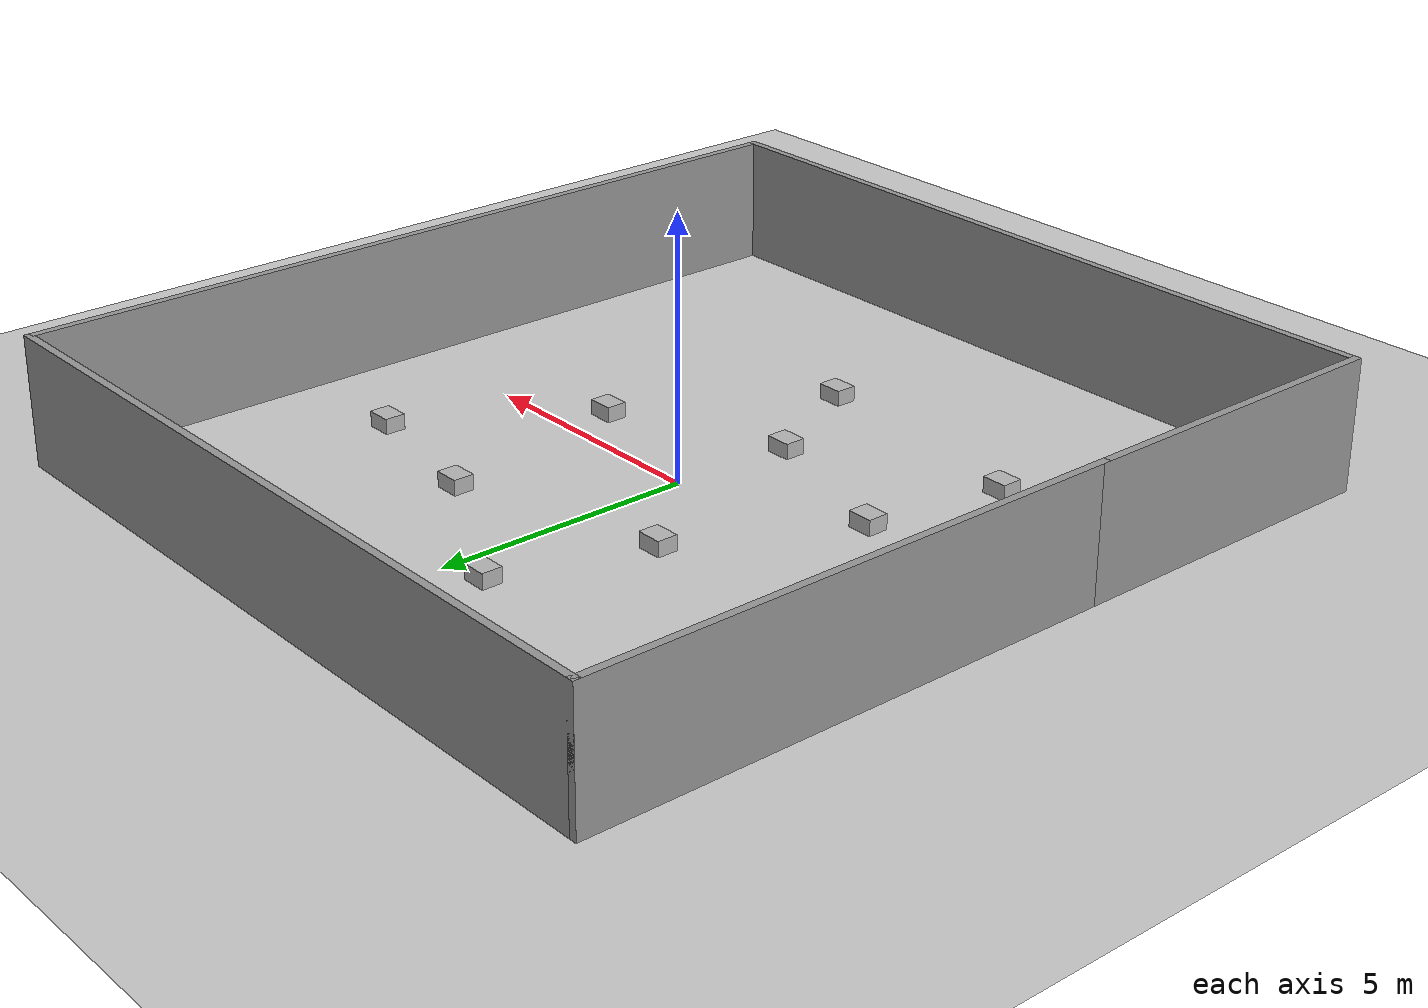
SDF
<sdf version="1.7">
 <world name="default">
  <light name="sun" type="directional">
   <pose>0 0 10 0 -0 0</pose>
   <diffuse>0.8 0.8 0.8 1</diffuse>
   <specular>0.2 0.2 0.2 1</specular>
   <attenuation>
    <range>1000</range>
    <constant>0.9</constant>
    <linear>0.01</linear>
    <quadratic>0.001</quadratic>
   </attenuation>
   <direction>-0.5 0.1 -0.9</direction>
   <spot><inner_angle>0</inner_angle><outer_angle>0</outer_angle><falloff>0</falloff></spot>
  </light>
  <model name="ground_plane">
   <static>1</static>
   <link name="link">
    <collision name="collision">
     <geometry><plane><normal>0 0 1</normal><size>100 100</size></plane></geometry>
     <surface><friction><ode><mu>100</mu><mu2>50</mu2></ode></friction></surface>
    </collision>
    <visual name="visual">
     <cast_shadows>0</cast_shadows>
     <geometry><plane><normal>0 0 1</normal><size>100 100</size></plane></geometry>
     <material>
      <script><uri>file://media/materials/scripts/gazebo.material</uri><name>Gazebo/Grey</name></script>
     </material>
    </visual>
   </link>
  </model>
  <gravity>0 0 -9.8</gravity>
  <magnetic_field>6e-06 2.3e-05 -4.2e-05</magnetic_field>
  <atmosphere type="adiabatic"/>
  <physics type="ode">
   <max_step_size>0.001</max_step_size>
   <real_time_factor>1</real_time_factor>
   <real_time_update_rate>1000</real_time_update_rate>
  </physics>
  <scene><ambient>0.4 0.4 0.4 1</ambient><background>0.7 0.7 0.7 1</background><shadows>1</shadows></scene>
  <spherical_coordinates>
   <surface_model>EARTH_WGS84</surface_model>
   <latitude_deg>0</latitude_deg>
   <longitude_deg>0</longitude_deg>
   <elevation>0</elevation>
   <heading_deg>0</heading_deg>
  </spherical_coordinates>
  <model name="cardboard_box">
   <pose>-1.70087 1.85406 0.149 0 -0 0</pose>
   <link name="link">
    <inertial>
     <mass>2</mass>
     <inertia>
      <ixx>0.0416667</ixx>
      <ixy>0</ixy>
      <ixz>0</ixz>
      <iyy>0.0566667</iyy>
      <iyz>0</iyz>
      <izz>0.0683333</izz>
     </inertia>
    </inertial>
    <collision name="collision">
     <geometry><box><size>0.5 0.4 0.3</size></box></geometry>
     <surface>
      <friction><ode><mu>1</mu><mu2>1</mu2></ode></friction>
      <contact><ode><kp>1e+07</kp><kd>1</kd><min_depth>0.001</min_depth><max_vel>0.1</max_vel></ode></contact>
     </surface>
    </collision>
    <visual name="visual">
     <pose>0 0 -0.15 0 -0 0</pose>
     <geometry>
      <mesh><uri>model://cardboard_box/meshes/cardboard_box.dae</uri><scale>1.25932 1.00745 0.755591</scale></mesh>
     </geometry>
    </visual>
   </link>
  </model>
  <model name="cardboard_box_0">
   <pose>-3.36851 -1.33775 0.149 0 -0 0</pose>
   <link name="link">
    <inertial>
     <mass>2</mass>
     <inertia>
      <ixx>0.0416667</ixx>
      <ixy>0</ixy>
      <ixz>0</ixz>
      <iyy>0.0566667</iyy>
      <iyz>0</iyz>
      <izz>0.0683333</izz>
     </inertia>
    </inertial>
    <collision name="collision">
     <geometry><box><size>0.5 0.4 0.3</size></box></geometry>
     <surface>
      <friction><ode><mu>1</mu><mu2>1</mu2></ode></friction>
      <contact><ode><kp>1e+07</kp><kd>1</kd><min_depth>0.001</min_depth><max_vel>0.1</max_vel></ode></contact>
     </surface>
    </collision>
    <visual name="visual">
     <pose>0 0 -0.15 0 -0 0</pose>
     <geometry>
      <mesh><uri>model://cardboard_box/meshes/cardboard_box.dae</uri><scale>1.25932 1.00745 0.755591</scale></mesh>
     </geometry>
    </visual>
   </link>
  </model>
  <model name="cardboard_box_1">
   <pose>-0.240151 -2.31317 0.149 0 -0 0</pose>
   <link name="link">
    <inertial>
     <mass>2</mass>
     <inertia>
      <ixx>0.0416667</ixx>
      <ixy>0</ixy>
      <ixz>0</ixz>
      <iyy>0.0566667</iyy>
      <iyz>0</iyz>
      <izz>0.0683333</izz>
     </inertia>
    </inertial>
    <collision name="collision">
     <geometry><box><size>0.5 0.4 0.3</size></box></geometry>
     <surface>
      <friction><ode><mu>1</mu><mu2>1</mu2></ode></friction>
      <contact><ode><kp>1e+07</kp><kd>1</kd><min_depth>0.001</min_depth><max_vel>0.1</max_vel></ode></contact>
     </surface>
    </collision>
    <visual name="visual">
     <pose>0 0 -0.15 0 -0 0</pose>
     <geometry>
      <mesh><uri>model://cardboard_box/meshes/cardboard_box.dae</uri><scale>1.25932 1.00745 0.755591</scale></mesh>
     </geometry>
    </visual>
   </link>
  </model>
  <model name="cardboard_box_2">
   <pose>2.344 3.06444 0.149 0 -0 0</pose>
   <link name="link">
    <inertial>
     <mass>2</mass>
     <inertia>
      <ixx>0.0416667</ixx>
      <ixy>0</ixy>
      <ixz>0</ixz>
      <iyy>0.0566667</iyy>
      <iyz>0</iyz>
      <izz>0.0683333</izz>
     </inertia>
    </inertial>
    <collision name="collision">
     <geometry><box><size>0.5 0.4 0.3</size></box></geometry>
     <surface>
      <friction><ode><mu>1</mu><mu2>1</mu2></ode></friction>
      <contact><ode><kp>1e+07</kp><kd>1</kd><min_depth>0.001</min_depth><max_vel>0.1</max_vel></ode></contact>
     </surface>
    </collision>
    <visual name="visual">
     <pose>0 0 -0.15 0 -0 0</pose>
     <geometry>
      <mesh><uri>model://cardboard_box/meshes/cardboard_box.dae</uri><scale>1.25932 1.00745 0.755591</scale></mesh>
     </geometry>
    </visual>
   </link>
  </model>
  <model name="cardboard_box_3">
   <pose>-5.43729 1.58346 0.149 0 -0 0</pose>
   <link name="link">
    <inertial>
     <mass>2</mass>
     <inertia>
      <ixx>0.0416667</ixx>
      <ixy>0</ixy>
      <ixz>0</ixz>
      <iyy>0.0566667</iyy>
      <iyz>0</iyz>
      <izz>0.0683333</izz>
     </inertia>
    </inertial>
    <collision name="collision">
     <geometry><box><size>0.5 0.4 0.3</size></box></geometry>
     <surface>
      <friction><ode><mu>1</mu><mu2>1</mu2></ode></friction>
      <contact><ode><kp>1e+07</kp><kd>1</kd><min_depth>0.001</min_depth><max_vel>0.1</max_vel></ode></contact>
     </surface>
    </collision>
    <visual name="visual">
     <pose>0 0 -0.15 0 -0 0</pose>
     <geometry>
      <mesh><uri>model://cardboard_box/meshes/cardboard_box.dae</uri><scale>1.25932 1.00745 0.755591</scale></mesh>
     </geometry>
    </visual>
   </link>
  </model>
  <model name="cardboard_box_4">
   <pose>-0.76537 4.72605 0.149 0 -0 0</pose>
   <link name="link">
    <inertial>
     <mass>2</mass>
     <inertia>
      <ixx>0.0416667</ixx>
      <ixy>0</ixy>
      <ixz>0</ixz>
      <iyy>0.0566667</iyy>
      <iyz>0</iyz>
      <izz>0.0683333</izz>
     </inertia>
    </inertial>
    <collision name="collision">
     <geometry><box><size>0.5 0.4 0.3</size></box></geometry>
     <surface>
      <friction><ode><mu>1</mu><mu2>1</mu2></ode></friction>
      <contact><ode><kp>1e+07</kp><kd>1</kd><min_depth>0.001</min_depth><max_vel>0.1</max_vel></ode></contact>
     </surface>
    </collision>
    <visual name="visual">
     <pose>0 0 -0.15 0 -0 0</pose>
     <geometry>
      <mesh><uri>model://cardboard_box/meshes/cardboard_box.dae</uri><scale>1.25932 1.00745 0.755591</scale></mesh>
     </geometry>
    </visual>
   </link>
  </model>
  <model name="cardboard_box_5">
   <pose>3.05626 -0.882328 0.149 0 -0 0</pose>
   <link name="link">
    <inertial>
     <mass>2</mass>
     <inertia>
      <ixx>0.0416667</ixx>
      <ixy>0</ixy>
      <ixz>0</ixz>
      <iyy>0.0566667</iyy>
      <iyz>0</iyz>
      <izz>0.0683333</izz>
     </inertia>
    </inertial>
    <collision name="collision">
     <geometry><box><size>0.5 0.4 0.3</size></box></geometry>
     <surface>
      <friction><ode><mu>1</mu><mu2>1</mu2></ode></friction>
      <contact><ode><kp>1e+07</kp><kd>1</kd><min_depth>0.001</min_depth><max_vel>0.1</max_vel></ode></contact>
     </surface>
    </collision>
    <visual name="visual">
     <pose>0 0 -0.15 0 -0 0</pose>
     <geometry>
      <mesh><uri>model://cardboard_box/meshes/cardboard_box.dae</uri><scale>1.25932 1.00745 0.755591</scale></mesh>
     </geometry>
    </visual>
   </link>
  </model>
  <model name="cardboard_box_6">
   <pose>-3.89242 -4.02625 0.149 0 -0 0</pose>
   <link name="link">
    <inertial>
     <mass>2</mass>
     <inertia>
      <ixx>0.0416667</ixx>
      <ixy>0</ixy>
      <ixz>0</ixz>
      <iyy>0.0566667</iyy>
      <iyz>0</iyz>
      <izz>0.0683333</izz>
     </inertia>
    </inertial>
    <collision name="collision">
     <geometry><box><size>0.5 0.4 0.3</size></box></geometry>
     <surface>
      <friction><ode><mu>1</mu><mu2>1</mu2></ode></friction>
      <contact><ode><kp>1e+07</kp><kd>1</kd><min_depth>0.001</min_depth><max_vel>0.1</max_vel></ode></contact>
     </surface>
    </collision>
    <visual name="visual">
     <pose>0 0 -0.15 0 -0 0</pose>
     <geometry>
      <mesh><uri>model://cardboard_box/meshes/cardboard_box.dae</uri><scale>1.25932 1.00745 0.755591</scale></mesh>
     </geometry>
    </visual>
   </link>
  </model>
  <model name="cardboard_box_7">
   <pose>-6.17603 -2.14857 0.149 0 -0 0</pose>
   <link name="link">
    <inertial>
     <mass>2</mass>
     <inertia>
      <ixx>0.0416667</ixx>
      <ixy>0</ixy>
      <ixz>0</ixz>
      <iyy>0.0566667</iyy>
      <iyz>0</iyz>
      <izz>0.0683333</izz>
     </inertia>
    </inertial>
    <collision name="collision">
     <geometry><box><size>0.5 0.4 0.3</size></box></geometry>
     <surface>
      <friction><ode><mu>1</mu><mu2>1</mu2></ode></friction>
      <contact><ode><kp>1e+07</kp><kd>1</kd><min_depth>0.001</min_depth><max_vel>0.1</max_vel></ode></contact>
     </surface>
    </collision>
    <visual name="visual">
     <pose>0 0 -0.15 0 -0 0</pose>
     <geometry>
      <mesh><uri>model://cardboard_box/meshes/cardboard_box.dae</uri><scale>1.25932 1.00745 0.755591</scale></mesh>
     </geometry>
    </visual>
   </link>
  </model>
  <model name="cardboard_box_8">
   <pose>5.23335 2.53065 0.149 0 -0 0</pose>
   <link name="link">
    <inertial>
     <mass>2</mass>
     <inertia>
      <ixx>0.0416667</ixx>
      <ixy>0</ixy>
      <ixz>0</ixz>
      <iyy>0.0566667</iyy>
      <iyz>0</iyz>
      <izz>0.0683333</izz>
     </inertia>
    </inertial>
    <collision name="collision">
     <geometry><box><size>0.5 0.4 0.3</size></box></geometry>
     <surface>
      <friction><ode><mu>1</mu><mu2>1</mu2></ode></friction>
      <contact><ode><kp>1e+07</kp><kd>1</kd><min_depth>0.001</min_depth><max_vel>0.1</max_vel></ode></contact>
     </surface>
    </collision>
    <visual name="visual">
     <pose>0 0 -0.15 0 -0 0</pose>
     <geometry>
      <mesh><uri>model://cardboard_box/meshes/cardboard_box.dae</uri><scale>1.25932 1.00745 0.755591</scale></mesh>
     </geometry>
    </visual>
   </link>
  </model>
  <model name="cardboard_box_9">
   <pose>0.885242 -4.61813 0.149021 2e-06 -2e-06 -0</pose>
   <link name="link">
    <inertial>
     <mass>2</mass>
     <inertia>
      <ixx>0.0416667</ixx>
      <ixy>0</ixy>
      <ixz>0</ixz>
      <iyy>0.0566667</iyy>
      <iyz>0</iyz>
      <izz>0.0683333</izz>
     </inertia>
    </inertial>
    <collision name="collision">
     <geometry><box><size>0.5 0.4 0.3</size></box></geometry>
     <surface>
      <friction><ode><mu>1</mu><mu2>1</mu2></ode></friction>
      <contact><ode><kp>1e+07</kp><kd>1</kd><min_depth>0.001</min_depth><max_vel>0.1</max_vel></ode></contact>
     </surface>
    </collision>
    <visual name="visual">
     <pose>0 0 -0.15 0 -0 0</pose>
     <geometry>
      <mesh><uri>model://cardboard_box/meshes/cardboard_box.dae</uri><scale>1.25932 1.00745 0.755591</scale></mesh>
     </geometry>
    </visual>
   </link>
  </model>
  <model name="wall">
   <pose>0.075 -0.23 0 0 -0 0</pose>
   <link name="Wall_0">
    <collision name="Wall_0_Collision">
     <geometry><box><size>6.5 0.15 2.5</size></box></geometry>
     <pose>0 0 1.25 0 -0 0</pose>
    </collision>
    <visual name="Wall_0_Visual">
     <pose>0 0 1.25 0 -0 0</pose>
     <geometry><box><size>6.5 0.15 2.5</size></box></geometry>
     <material>
      <script><uri>file://media/materials/scripts/gazebo.material</uri><name>Gazebo/Grey</name></script>
      <ambient>1 1 1 1</ambient>
     </material>
     <meta><layer>0</layer></meta>
    </visual>
    <pose>-7.675 -5.175 0 0 -0 -1.5708</pose>
   </link>
   <link name="Wall_1">
    <collision name="Wall_1_Collision">
     <geometry><box><size>15.5 0.15 2.5</size></box></geometry>
     <pose>0 0 1.25 0 -0 0</pose>
    </collision>
    <visual name="Wall_1_Visual">
     <pose>0 0 1.25 0 -0 0</pose>
     <geometry><box><size>15.5 0.15 2.5</size></box></geometry>
     <material>
      <script><uri>file://media/materials/scripts/gazebo.material</uri><name>Gazebo/Grey</name></script>
      <ambient>1 1 1 1</ambient>
     </material>
     <meta><layer>0</layer></meta>
    </visual>
    <pose>-0 -8.35 0 0 -0 0</pose>
   </link>
   <link name="Wall_2">
    <collision name="Wall_2_Collision">
     <geometry><box><size>16.75 0.15 2.5</size></box></geometry>
     <pose>0 0 1.25 0 -0 0</pose>
    </collision>
    <visual name="Wall_2_Visual">
     <pose>0 0 1.25 0 -0 0</pose>
     <geometry><box><size>16.75 0.15 2.5</size></box></geometry>
     <material>
      <script><uri>file://media/materials/scripts/gazebo.material</uri><name>Gazebo/Grey</name></script>
      <ambient>1 1 1 1</ambient>
     </material>
     <meta><layer>0</layer></meta>
    </visual>
    <pose>7.675 -0.05 0 0 -0 1.5708</pose>
   </link>
   <link name="Wall_5">
    <collision name="Wall_5_Collision">
     <geometry><box><size>10.5 0.15 2.5</size></box></geometry>
     <pose>0 0 1.25 0 -0 0</pose>
    </collision>
    <visual name="Wall_5_Visual">
     <pose>0 0 1.25 0 -0 0</pose>
     <geometry><box><size>10.5 0.15 2.5</size></box></geometry>
     <material>
      <script><uri>file://media/materials/scripts/gazebo.material</uri><name>Gazebo/Grey</name></script>
      <ambient>1 1 1 1</ambient>
     </material>
     <meta><layer>0</layer></meta>
    </visual>
    <pose>-7.675 3.175 0 0 -0 1.5708</pose>
   </link>
   <link name="Wall_6">
    <collision name="Wall_6_Collision">
     <geometry><box><size>15.5 0.15 2.5</size></box></geometry>
     <pose>0 0 1.25 0 -0 0</pose>
    </collision>
    <visual name="Wall_6_Visual">
     <pose>0 0 1.25 0 -0 0</pose>
     <geometry><box><size>15.5 0.15 2.5</size></box></geometry>
     <material>
      <script><uri>file://media/materials/scripts/gazebo.material</uri><name>Gazebo/Grey</name></script>
      <ambient>1 1 1 1</ambient>
     </material>
     <meta><layer>0</layer></meta>
    </visual>
    <pose>-0 8.35 0 0 -0 0</pose>
   </link>
   <static>1</static>
  </model>
 </world>
</sdf>
